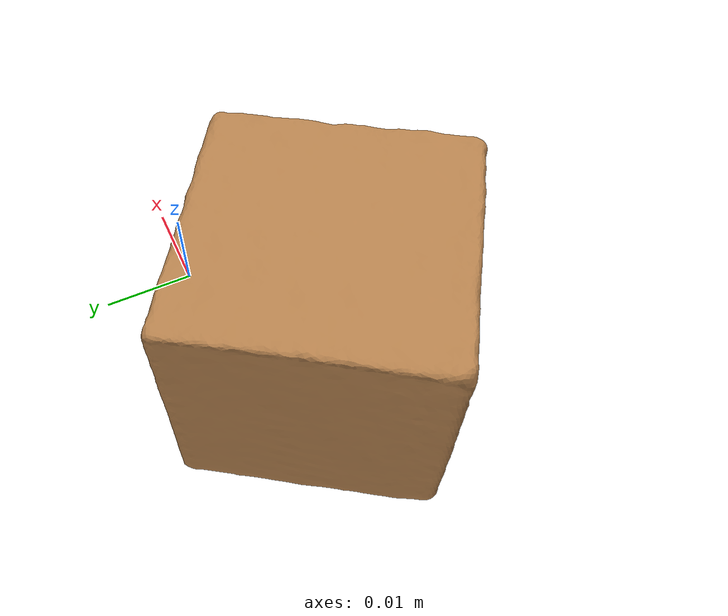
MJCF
<mujoco model="colored_wood_blocks">
  <compiler angle="radian" meshdir="assets" texturedir="assets"/>
    <default>
        <default class="ycb_col">
            <geom contype="1" conaffinity="1" group="3" rgba=".4 .5 .6 1"/>
        </default>
        <default class="ycb_viz">
            <geom contype="0" conaffinity="0" type="mesh" mass="0"/>
        </default>
    </default>
  <asset>
    <texture type="2d" name="b_colored_wood_blocks_tex" file="texture_map.png"/>
    <material name="b_colored_wood_blocks_mat" texture="b_colored_wood_blocks_tex" specular="0.5" shininess="0.5"/>
    <mesh file="textured.obj" name="b_colored_wood_blocks"/>
    <mesh file="textured_collision_0.obj" name="b_colored_wood_blocks_collision_0"/>
  </asset>
  <worldbody>
      <geom material="b_colored_wood_blocks_mat" mesh="b_colored_wood_blocks" class="ycb_viz"/>
      <geom mesh="b_colored_wood_blocks_collision_0" class="ycb_col" conaffinity="1" condim="4" friction="0.1 0.1 0.1" mass="0.010799999999999999" rgba="1 1 1 1" solimp="0.99 0.99 0.01" solref=".001 0.1" type="mesh" group="3"/>
  </worldbody>
</mujoco>
